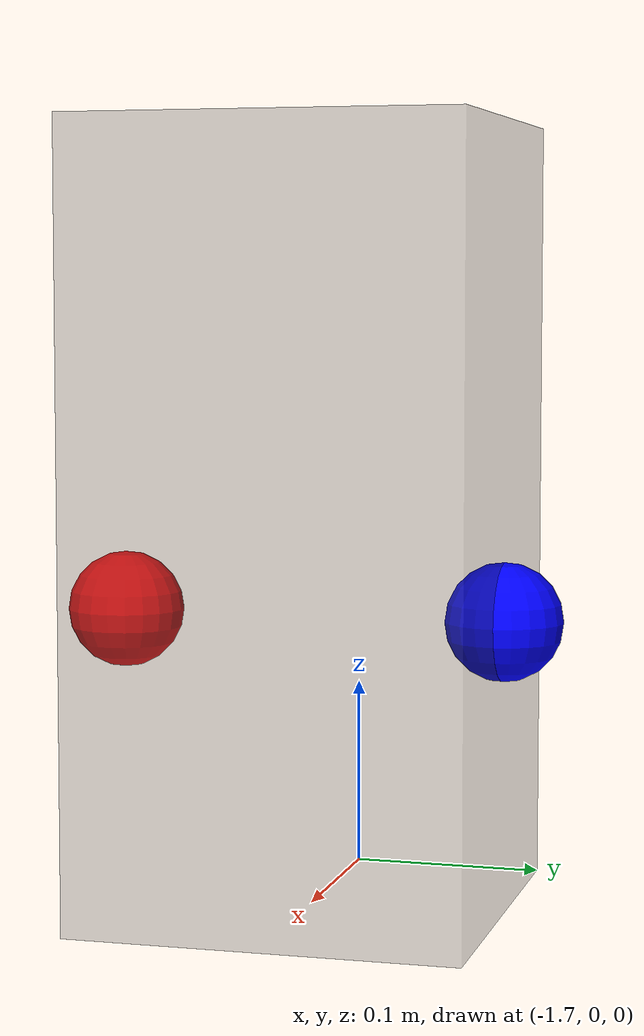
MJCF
<mujoco>
  <visual>
    <headlight ambient="0.4 0.4 0.4" diffuse="0.8 0.8 0.8" specular="0.3 0.3 0.3" />
  </visual>

  <worldbody>
<!--  所有freejoint放在末尾-->
    <body name="object" pos="0.0 0.0 0.0" quat="1 0 0 0">
      <joint name="obj_free" type="free"/>
      <geom name="floating_box_collision"
        type="box"
        pos="-1.6 0 0.2"
        size="0.1 0.1 0.19999"
        rgba="0.3 0.3 0.3 0.3"
        contype="1"
        conaffinity="1"/>
      <site name="grasp_left" pos="-1.6 -0.1 0.15" size="0.03" rgba="1 0 0 1"/>
      <site name="grasp_right" pos="-1.6 0.1 0.15" size="0.03" rgba="0 0 1 1"/>
    </body>
  </worldbody>
  <sensor>
      <force name="grasp_left_force" site="grasp_left"/>
      <force name="grasp_right_force" site="grasp_right"/>
  </sensor>
</mujoco>
